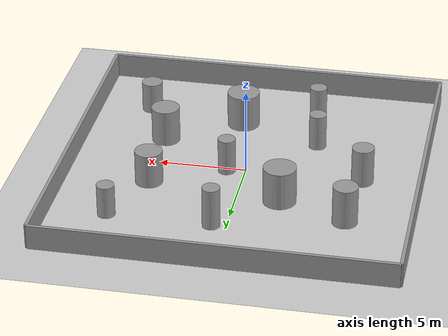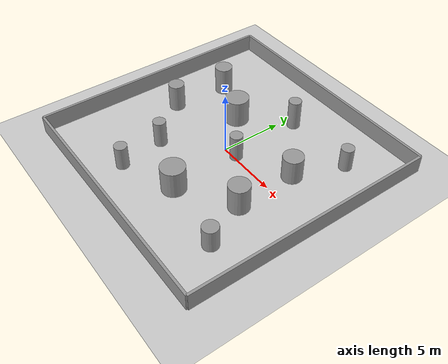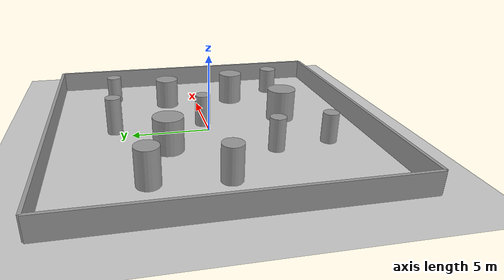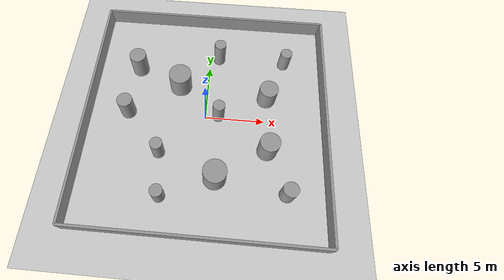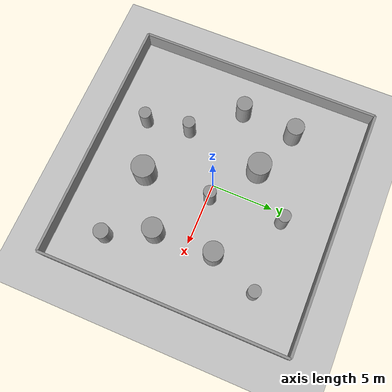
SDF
<sdf version="1.6">
 <world name="default">
  <light name="sun" type="directional">
   <cast_shadows>0</cast_shadows>
   <pose>0 0 10 0 -0 0</pose>
   <diffuse>0.8 0.8 0.8 1</diffuse>
   <specular>0.1 0.1 0.1 1</specular>
   <attenuation>
    <range>1000</range>
    <constant>0.9</constant>
    <linear>0.01</linear>
    <quadratic>0.001</quadratic>
   </attenuation>
   <direction>-0.5 0.5 -1</direction>
  </light>
  <model name="ground_plane">
   <static>1</static>
   <link name="link">
    <collision name="collision">
     <geometry><plane><normal>0 0 1</normal><size>100 100</size></plane></geometry>
     <surface><friction><ode><mu>100</mu><mu2>50</mu2></ode></friction></surface>
    </collision>
    <visual name="visual">
     <cast_shadows>0</cast_shadows>
     <geometry><plane><normal>0 0 1</normal><size>100 100</size></plane></geometry>
     <material>
      <script><uri>file://media/materials/scripts/gazebo.material</uri><name>Gazebo/Grey</name></script>
     </material>
    </visual>
   </link>
  </model>
  <gravity>0 0 -9.8</gravity>
  <magnetic_field>6e-06 2.3e-05 -4.2e-05</magnetic_field>
  <atmosphere type="adiabatic"/>
  <physics name="default_physics" default="0" type="ode">
   <max_step_size>0.001</max_step_size>
   <real_time_factor>1</real_time_factor>
   <real_time_update_rate>1000</real_time_update_rate>
  </physics>
  <scene><ambient>0.4 0.4 0.4 1</ambient><background>0.7 0.7 0.7 1</background><shadows>1</shadows></scene>
  <spherical_coordinates>
   <surface_model>EARTH_WGS84</surface_model>
   <latitude_deg>0</latitude_deg>
   <longitude_deg>0</longitude_deg>
   <elevation>0</elevation>
   <heading_deg>0</heading_deg>
  </spherical_coordinates>
  <model name="grey_wall_1">
   <link name="link">
    <inertial>
     <mass>1</mass>
     <inertia><ixx>1</ixx><ixy>0</ixy><ixz>0</ixz><iyy>1</iyy><iyz>0</iyz><izz>1</izz></inertia>
    </inertial>
    <visual name="visual">
     <cast_shadows>0</cast_shadows>
     <geometry><box><size>20 0.2 2.8</size></box></geometry>
     <material>
      <script>
       <uri>model://grey_wall/materials/scripts</uri>
       <uri>model://grey_wall/materials/textures</uri>
       <name>vrc/grey_wall</name>
      </script>
      <ambient>1 1 1 1</ambient>
      <diffuse>1 1 1 1</diffuse>
      <specular>0 0 0 1</specular>
      <emissive>0 0 0 1</emissive>
      <shader type="vertex"><normal_map>__default__</normal_map></shader>
     </material>
    </visual>
    <collision name="collision">
     <geometry><box><size>20 0.2 2.8</size></box></geometry>
     <surface>
      <friction>
       <ode><mu>1</mu><mu2>1</mu2><fdir1>0 0 0</fdir1><slip1>0</slip1><slip2>0</slip2></ode>
       <torsional>
        <coefficient>1</coefficient>
        <patch_radius>0</patch_radius>
        <surface_radius>0</surface_radius>
        <use_patch_radius>1</use_patch_radius>
        <ode><slip>0</slip></ode>
       </torsional>
      </friction>
      <bounce><restitution_coefficient>0</restitution_coefficient><threshold>1e+06</threshold></bounce>
      <contact>
       <collide_without_contact>0</collide_without_contact>
       <collide_without_contact_bitmask>1</collide_without_contact_bitmask>
       <collide_bitmask>1</collide_bitmask>
       <ode>
        <soft_cfm>0</soft_cfm>
        <soft_erp>0.2</soft_erp>
        <kp>1e+13</kp>
        <kd>1</kd>
        <max_vel>0.01</max_vel>
        <min_depth>0</min_depth>
       </ode>
       <bullet>
        <split_impulse>1</split_impulse>
        <split_impulse_penetration_threshold>-0.01</split_impulse_penetration_threshold>
        <soft_cfm>0</soft_cfm>
        <soft_erp>0.2</soft_erp>
        <kp>1e+13</kp>
        <kd>1</kd>
       </bullet>
      </contact>
     </surface>
    </collision>
   </link>
   <static>1</static>
   <pose>0 10 0 0 -0 0</pose>
  </model>
  <model name="grey_wall_2">
   <link name="link">
    <inertial>
     <mass>1</mass>
     <inertia><ixx>1</ixx><ixy>0</ixy><ixz>0</ixz><iyy>1</iyy><iyz>0</iyz><izz>1</izz></inertia>
    </inertial>
    <visual name="visual">
     <cast_shadows>0</cast_shadows>
     <geometry><box><size>20 0.2 2.8</size></box></geometry>
     <material>
      <script>
       <uri>model://grey_wall/materials/scripts</uri>
       <uri>model://grey_wall/materials/textures</uri>
       <name>vrc/grey_wall</name>
      </script>
      <ambient>1 1 1 1</ambient>
      <diffuse>1 1 1 1</diffuse>
      <specular>0 0 0 1</specular>
      <emissive>0 0 0 1</emissive>
      <shader type="vertex"><normal_map>__default__</normal_map></shader>
     </material>
    </visual>
    <collision name="collision">
     <geometry><box><size>20 0.2 2.8</size></box></geometry>
     <surface>
      <friction>
       <ode><mu>1</mu><mu2>1</mu2><fdir1>0 0 0</fdir1><slip1>0</slip1><slip2>0</slip2></ode>
       <torsional>
        <coefficient>1</coefficient>
        <patch_radius>0</patch_radius>
        <surface_radius>0</surface_radius>
        <use_patch_radius>1</use_patch_radius>
        <ode><slip>0</slip></ode>
       </torsional>
      </friction>
      <bounce><restitution_coefficient>0</restitution_coefficient><threshold>1e+06</threshold></bounce>
      <contact>
       <collide_without_contact>0</collide_without_contact>
       <collide_without_contact_bitmask>1</collide_without_contact_bitmask>
       <collide_bitmask>1</collide_bitmask>
       <ode>
        <soft_cfm>0</soft_cfm>
        <soft_erp>0.2</soft_erp>
        <kp>1e+13</kp>
        <kd>1</kd>
        <max_vel>0.01</max_vel>
        <min_depth>0</min_depth>
       </ode>
       <bullet>
        <split_impulse>1</split_impulse>
        <split_impulse_penetration_threshold>-0.01</split_impulse_penetration_threshold>
        <soft_cfm>0</soft_cfm>
        <soft_erp>0.2</soft_erp>
        <kp>1e+13</kp>
        <kd>1</kd>
       </bullet>
      </contact>
     </surface>
    </collision>
   </link>
   <static>1</static>
   <pose>0 -10 0 0 -0 0</pose>
  </model>
  <model name="grey_wall_3">
   <link name="link">
    <inertial>
     <mass>1</mass>
     <inertia><ixx>1</ixx><ixy>0</ixy><ixz>0</ixz><iyy>1</iyy><iyz>0</iyz><izz>1</izz></inertia>
    </inertial>
    <visual name="visual">
     <cast_shadows>0</cast_shadows>
     <geometry><box><size>20 0.2 2.8</size></box></geometry>
     <material>
      <script>
       <uri>model://grey_wall/materials/scripts</uri>
       <uri>model://grey_wall/materials/textures</uri>
       <name>vrc/grey_wall</name>
      </script>
      <ambient>1 1 1 1</ambient>
      <diffuse>1 1 1 1</diffuse>
      <specular>0 0 0 1</specular>
      <emissive>0 0 0 1</emissive>
      <shader type="vertex"><normal_map>__default__</normal_map></shader>
     </material>
    </visual>
    <collision name="collision">
     <geometry><box><size>20 0.2 2.8</size></box></geometry>
     <surface>
      <friction>
       <ode><mu>1</mu><mu2>1</mu2><fdir1>0 0 0</fdir1><slip1>0</slip1><slip2>0</slip2></ode>
       <torsional>
        <coefficient>1</coefficient>
        <patch_radius>0</patch_radius>
        <surface_radius>0</surface_radius>
        <use_patch_radius>1</use_patch_radius>
        <ode><slip>0</slip></ode>
       </torsional>
      </friction>
      <bounce><restitution_coefficient>0</restitution_coefficient><threshold>1e+06</threshold></bounce>
      <contact>
       <collide_without_contact>0</collide_without_contact>
       <collide_without_contact_bitmask>1</collide_without_contact_bitmask>
       <collide_bitmask>1</collide_bitmask>
       <ode>
        <soft_cfm>0</soft_cfm>
        <soft_erp>0.2</soft_erp>
        <kp>1e+13</kp>
        <kd>1</kd>
        <max_vel>0.01</max_vel>
        <min_depth>0</min_depth>
       </ode>
       <bullet>
        <split_impulse>1</split_impulse>
        <split_impulse_penetration_threshold>-0.01</split_impulse_penetration_threshold>
        <soft_cfm>0</soft_cfm>
        <soft_erp>0.2</soft_erp>
        <kp>1e+13</kp>
        <kd>1</kd>
       </bullet>
      </contact>
     </surface>
    </collision>
   </link>
   <static>1</static>
   <pose>-10 0 0 0 0 -1.5708</pose>
  </model>
  <model name="grey_wall_4">
   <link name="link">
    <inertial>
     <mass>1</mass>
     <inertia><ixx>1</ixx><ixy>0</ixy><ixz>0</ixz><iyy>1</iyy><iyz>0</iyz><izz>1</izz></inertia>
    </inertial>
    <visual name="visual">
     <cast_shadows>0</cast_shadows>
     <geometry><box><size>20 0.2 2.8</size></box></geometry>
     <material>
      <script>
       <uri>model://grey_wall/materials/scripts</uri>
       <uri>model://grey_wall/materials/textures</uri>
       <name>vrc/grey_wall</name>
      </script>
      <ambient>1 1 1 1</ambient>
      <diffuse>1 1 1 1</diffuse>
      <specular>0 0 0 1</specular>
      <emissive>0 0 0 1</emissive>
      <shader type="vertex"><normal_map>__default__</normal_map></shader>
     </material>
    </visual>
    <collision name="collision">
     <geometry><box><size>20 0.2 2.8</size></box></geometry>
     <surface>
      <friction>
       <ode><mu>1</mu><mu2>1</mu2><fdir1>0 0 0</fdir1><slip1>0</slip1><slip2>0</slip2></ode>
       <torsional>
        <coefficient>1</coefficient>
        <patch_radius>0</patch_radius>
        <surface_radius>0</surface_radius>
        <use_patch_radius>1</use_patch_radius>
        <ode><slip>0</slip></ode>
       </torsional>
      </friction>
      <bounce><restitution_coefficient>0</restitution_coefficient><threshold>1e+06</threshold></bounce>
      <contact>
       <collide_without_contact>0</collide_without_contact>
       <collide_without_contact_bitmask>1</collide_without_contact_bitmask>
       <collide_bitmask>1</collide_bitmask>
       <ode>
        <soft_cfm>0</soft_cfm>
        <soft_erp>0.2</soft_erp>
        <kp>1e+13</kp>
        <kd>1</kd>
        <max_vel>0.01</max_vel>
        <min_depth>0</min_depth>
       </ode>
       <bullet>
        <split_impulse>1</split_impulse>
        <split_impulse_penetration_threshold>-0.01</split_impulse_penetration_threshold>
        <soft_cfm>0</soft_cfm>
        <soft_erp>0.2</soft_erp>
        <kp>1e+13</kp>
        <kd>1</kd>
       </bullet>
      </contact>
     </surface>
    </collision>
   </link>
   <static>1</static>
   <pose>10 0 0 0 -0 1.5708</pose>
  </model>
  <model name="unit_cylinder">
   <pose>1.14929 -5.30583 1.06262 0 0 -1.1e-05</pose>
   <link name="link">
    <inertial>
     <mass>1</mass>
     <inertia><ixx>0.145833</ixx><ixy>0</ixy><ixz>0</ixz><iyy>0.145833</iyy><iyz>0</iyz><izz>0.125</izz></inertia>
    </inertial>
    <collision name="collision">
     <geometry><cylinder><radius>0.938205</radius><length>2.12525</length></cylinder></geometry>
    </collision>
    <visual name="visual">
     <geometry><cylinder><radius>0.938205</radius><length>2.12525</length></cylinder></geometry>
     <material>
      <script><name>Gazebo/Grey</name><uri>file://media/materials/scripts/gazebo.material</uri></script>
     </material>
    </visual>
   </link>
  </model>
  <model name="unit_cylinder_0">
   <pose>-3.05269 -7.07451 0.961461 0 0 -1e-06</pose>
   <link name="link">
    <inertial>
     <mass>1</mass>
     <inertia><ixx>0.145833</ixx><ixy>0</ixy><ixz>0</ixz><iyy>0.145833</iyy><iyz>0</iyz><izz>0.125</izz></inertia>
    </inertial>
    <collision name="collision">
     <geometry><cylinder><radius>0.5</radius><length>1.92293</length></cylinder></geometry>
    </collision>
    <visual name="visual">
     <geometry><cylinder><radius>0.5</radius><length>1.92293</length></cylinder></geometry>
     <material>
      <script><name>Gazebo/Grey</name><uri>file://media/materials/scripts/gazebo.material</uri></script>
     </material>
    </visual>
   </link>
  </model>
  <model name="unit_cylinder_1">
   <pose>5.15098 2.16339 1.00181 -1e-06 1e-06 8.3e-05</pose>
   <link name="link">
    <inertial>
     <mass>1</mass>
     <inertia><ixx>0.145833</ixx><ixy>0</ixy><ixz>0</ixz><iyy>0.145833</iyy><iyz>0</iyz><izz>0.125</izz></inertia>
    </inertial>
    <collision name="collision">
     <geometry><cylinder><radius>0.785535</radius><length>2.00362</length></cylinder></geometry>
    </collision>
    <visual name="visual">
     <geometry><cylinder><radius>0.785535</radius><length>2.00362</length></cylinder></geometry>
     <material>
      <script><name>Gazebo/Grey</name><uri>file://media/materials/scripts/gazebo.material</uri></script>
     </material>
    </visual>
   </link>
  </model>
  <model name="unit_cylinder_2">
   <pose>5.25868 -2.66359 1.07062 0 -0 1.1e-05</pose>
   <link name="link">
    <inertial>
     <mass>1</mass>
     <inertia><ixx>0.145833</ixx><ixy>0</ixy><ixz>0</ixz><iyy>0.145833</iyy><iyz>0</iyz><izz>0.125</izz></inertia>
    </inertial>
    <collision name="collision">
     <geometry><cylinder><radius>0.81168</radius><length>2.14126</length></cylinder></geometry>
    </collision>
    <visual name="visual">
     <geometry><cylinder><radius>0.81168</radius><length>2.14126</length></cylinder></geometry>
     <material>
      <script><name>Gazebo/Grey</name><uri>file://media/materials/scripts/gazebo.material</uri></script>
     </material>
    </visual>
   </link>
  </model>
  <model name="unit_cylinder_3">
   <pose>1.07843 0.208956 1.04969 0 -0 1e-05</pose>
   <link name="link">
    <inertial>
     <mass>1</mass>
     <inertia><ixx>0.145833</ixx><ixy>0</ixy><ixz>0</ixz><iyy>0.145833</iyy><iyz>0</iyz><izz>0.125</izz></inertia>
    </inertial>
    <collision name="collision">
     <geometry><cylinder><radius>0.5</radius><length>2.09938</length></cylinder></geometry>
    </collision>
    <visual name="visual">
     <geometry><cylinder><radius>0.5</radius><length>2.09938</length></cylinder></geometry>
     <material>
      <script><name>Gazebo/Grey</name><uri>file://media/materials/scripts/gazebo.material</uri></script>
     </material>
    </visual>
   </link>
  </model>
  <model name="unit_cylinder_4">
   <pose>-2.42607 2.89776 1.09158 0 0 -8e-06</pose>
   <link name="link">
    <inertial>
     <mass>1</mass>
     <inertia><ixx>0.145833</ixx><ixy>0</ixy><ixz>0</ixz><iyy>0.145833</iyy><iyz>0</iyz><izz>0.125</izz></inertia>
    </inertial>
    <collision name="collision">
     <geometry><cylinder><radius>0.940215</radius><length>2.18315</length></cylinder></geometry>
    </collision>
    <visual name="visual">
     <geometry><cylinder><radius>0.940215</radius><length>2.18315</length></cylinder></geometry>
     <material>
      <script><name>Gazebo/Grey</name><uri>file://media/materials/scripts/gazebo.material</uri></script>
     </material>
    </visual>
   </link>
  </model>
  <model name="unit_cylinder_5">
   <pose>-6.65374 0.002902 1.11131 1e-06 -1e-06 1.4e-05</pose>
   <link name="link">
    <inertial>
     <mass>1</mass>
     <inertia><ixx>0.145833</ixx><ixy>0</ixy><ixz>0</ixz><iyy>0.145833</iyy><iyz>0</iyz><izz>0.125</izz></inertia>
    </inertial>
    <collision name="collision">
     <geometry><cylinder><radius>0.63222</radius><length>2.22262</length></cylinder></geometry>
    </collision>
    <visual name="visual">
     <geometry><cylinder><radius>0.63222</radius><length>2.22262</length></cylinder></geometry>
     <material>
      <script><name>Gazebo/Grey</name><uri>file://media/materials/scripts/gazebo.material</uri></script>
     </material>
    </visual>
   </link>
  </model>
  <model name="unit_cylinder_6">
   <pose>-3.5611 -3.49254 1.0609 0 -0 1.3e-05</pose>
   <link name="link">
    <inertial>
     <mass>1</mass>
     <inertia><ixx>0.145833</ixx><ixy>0</ixy><ixz>0</ixz><iyy>0.145833</iyy><iyz>0</iyz><izz>0.125</izz></inertia>
    </inertial>
    <collision name="collision">
     <geometry><cylinder><radius>0.5</radius><length>2.12181</length></cylinder></geometry>
    </collision>
    <visual name="visual">
     <geometry><cylinder><radius>0.5</radius><length>2.12181</length></cylinder></geometry>
     <material>
      <script><name>Gazebo/Grey</name><uri>file://media/materials/scripts/gazebo.material</uri></script>
     </material>
    </visual>
   </link>
  </model>
  <model name="unit_cylinder_7">
   <pose>6.66612 5.9834 0.94203 0 -0 1e-06</pose>
   <link name="link">
    <inertial>
     <mass>1</mass>
     <inertia><ixx>0.145833</ixx><ixy>0</ixy><ixz>0</ixz><iyy>0.145833</iyy><iyz>0</iyz><izz>0.125</izz></inertia>
    </inertial>
    <collision name="collision">
     <geometry><cylinder><radius>0.5</radius><length>1.88407</length></cylinder></geometry>
    </collision>
    <visual name="visual">
     <geometry><cylinder><radius>0.5</radius><length>1.88407</length></cylinder></geometry>
     <material>
      <script><name>Gazebo/Grey</name><uri>file://media/materials/scripts/gazebo.material</uri></script>
     </material>
    </visual>
   </link>
  </model>
  <model name="unit_cylinder_8">
   <pose>-6.28821 4.40969 1.14871 0 -0 3e-06</pose>
   <link name="link">
    <inertial>
     <mass>1</mass>
     <inertia><ixx>0.145833</ixx><ixy>0</ixy><ixz>0</ixz><iyy>0.145833</iyy><iyz>0</iyz><izz>0.125</izz></inertia>
    </inertial>
    <collision name="collision">
     <geometry><cylinder><radius>0.70722</radius><length>2.29743</length></cylinder></geometry>
    </collision>
    <visual name="visual">
     <geometry><cylinder><radius>0.70722</radius><length>2.29743</length></cylinder></geometry>
     <material>
      <script><name>Gazebo/Grey</name><uri>file://media/materials/scripts/gazebo.material</uri></script>
     </material>
    </visual>
   </link>
  </model>
  <model name="unit_cylinder_9">
   <pose>0.791046 6.05184 1.20335 0 0 -4.5e-05</pose>
   <link name="link">
    <inertial>
     <mass>1</mass>
     <inertia><ixx>0.145833</ixx><ixy>0</ixy><ixz>0</ixz><iyy>0.145833</iyy><iyz>0</iyz><izz>0.125</izz></inertia>
    </inertial>
    <collision name="collision">
     <geometry><cylinder><radius>0.5</radius><length>2.40671</length></cylinder></geometry>
    </collision>
    <visual name="visual">
     <geometry><cylinder><radius>0.5</radius><length>2.40671</length></cylinder></geometry>
     <material>
      <script><name>Gazebo/Grey</name><uri>file://media/materials/scripts/gazebo.material</uri></script>
     </material>
    </visual>
   </link>
  </model>
  <model name="unit_cylinder_10">
   <pose>6.86699 -6.14462 0.909559 0 0 -3.1e-05</pose>
   <link name="link">
    <inertial>
     <mass>1</mass>
     <inertia><ixx>0.145833</ixx><ixy>0</ixy><ixz>0</ixz><iyy>0.145833</iyy><iyz>0</iyz><izz>0.125</izz></inertia>
    </inertial>
    <collision name="collision">
     <geometry><cylinder><radius>0.604995</radius><length>1.81913</length></cylinder></geometry>
    </collision>
    <visual name="visual">
     <geometry><cylinder><radius>0.604995</radius><length>1.81913</length></cylinder></geometry>
     <material>
      <script><name>Gazebo/Grey</name><uri>file://media/materials/scripts/gazebo.material</uri></script>
     </material>
    </visual>
   </link>
  </model>
 </world>
</sdf>
